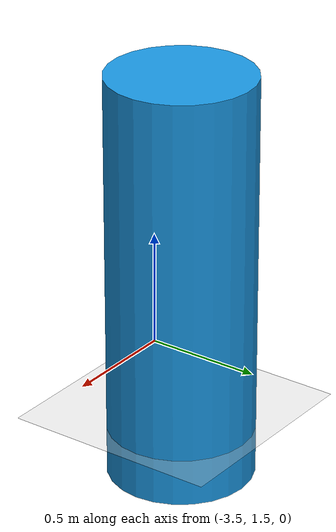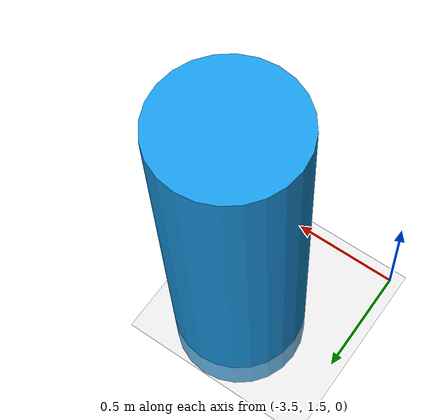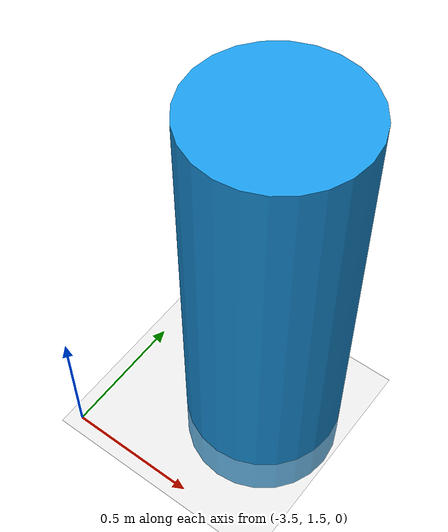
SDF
<sdf version='1.7'>
            <world name='default'>
                <light name='sun' type='directional'>
                <cast_shadows>1</cast_shadows>
                <pose>0 0 10 0 -0 0</pose>
                <diffuse>0.8 0.8 0.8 1</diffuse>
                <specular>0.2 0.2 0.2 1</specular>
                <attenuation>
                    <range>1000</range>
                    <constant>0.9</constant>
                    <linear>0.01</linear>
                    <quadratic>0.001</quadratic>
                </attenuation>
                <direction>-0.5 0.1 -0.9</direction>
                <spot>
                    <inner_angle>0</inner_angle>
                    <outer_angle>0</outer_angle>
                    <falloff>0</falloff>
                </spot>
                </light>

                <!-- Ground Plane地面 -->
                <model name='ground_plane'>
                  <static>true</static>
                  <link name='link'>
                    <collision name='collision'>
                      <geometry>
                        <plane>
                          <normal>0 0 1</normal>
                          <size>100 100</size>
                        </plane>
                      </geometry>
                      <surface>
                        <friction>
                          <ode>
                            <mu>100</mu>
                            <mu2>50</mu2>
                          </ode>
                        </friction>
                      </surface>
                    </collision>
                    <visual name='visual'>
                      <cast_shadows>0</cast_shadows>
                      <geometry>
                        <plane>
                          <normal>0 0 1</normal>
                          <size>100 100</size>
                        </plane>
                      </geometry>
                      <material>
                        <script>
                          <uri>file://media/materials/scripts/gazebo.material</uri>
                          <name>Gazebo/Grey</name>
                        </script>
                      </material>
                    </visual>
                  </link>
                </model>

                            <!-- 动态障碍物：急停场景 -->
                            <model name='dynamic_cylinder_0.6_0.6_1.7'>
                            <static>true</static>
                            <pose>-3 2 0.65 0 0 0</pose> <!-- X, Y, Z, Roll, Pitch, Yaw -->
                            <link name='link'>
                                <visual name='visual'>
                                    <geometry>
                                        <cylinder>
                                            <radius>0.3</radius>
                                            <length>1.7</length>
                                        </cylinder>
                                    </geometry>
                                    <material>
                                        <ambient>0.1 0.6 0.9 1</ambient> <!-- Blue color -->
                                        <diffuse>0.1 0.6 0.9 1</diffuse> <!-- Blue color -->
                                        <specular>0.5 0.5 0.5 1</specular> <!-- Specular highlight -->
                                    </material>
                                </visual>
                            </link>
                            <plugin name="obstacle_motion" filename="libobstaclePathPlugin.so">
                                <orientation>false</orientation>
                                <loop>0</loop>
                                <velocity>1.5</velocity>
                                <path>
                                <!-- 场景设计：从(-3, 2)出发 → 到(-2, -2)急停5秒 → 原路返回(-3, 2) → 再停5秒 -->

                                <!-- 起点：左上方 (-3, 2) -->
                                <waypoint>-3 2 0</waypoint>

                                <!-- 第一段：移动到(-2, -2)，距离约4.1米，耗时约10秒 -->
                                <waypoint>-2 -2 0</waypoint>

                                <!-- 第二段：急停5秒 - 使用原地转小圈（半径0.15米的圆，速度0.4m/s，周长约0.94米，转5圈约需4.7秒≈5秒）-->
                                <waypoint>-1.85 -2 0</waypoint>
                                <waypoint>-2 -1.85 0</waypoint>
                                <waypoint>-2.15 -2 0</waypoint>
                                <waypoint>-2 -2.15 0</waypoint>
                                <waypoint>-1.85 -2 0</waypoint>      <!-- 右，完成1圈 -->

                                <waypoint>-2 -1.85 0</waypoint>
                                <waypoint>-2.15 -2 0</waypoint>
                                <waypoint>-2 -2.15 0</waypoint>
                                <waypoint>-1.85 -2 0</waypoint>

                                <waypoint>-2 -1.85 0</waypoint>
                                <waypoint>-2.15 -2 0</waypoint>
                                <waypoint>-2 -2.15 0</waypoint>
                                <waypoint>-1.85 -2 0</waypoint>

                                <waypoint>-2 -1.85 0</waypoint>
                                <waypoint>-2.15 -2 0</waypoint>
                                <waypoint>-2 -2.15 0</waypoint>
                                <waypoint>-1.85 -2 0</waypoint>

                                <waypoint>-2 -1.85 0</waypoint>
                                <waypoint>-2.15 -2 0</waypoint>
                                <waypoint>-2 -2.15 0</waypoint>
                                <waypoint>-2 -2 0</waypoint>         <!-- 回到中心点 -->

                                <!-- 第三段：原路返回起点(-3, 2)，距离约4.1米，耗时约10秒 -->
                                <waypoint>-3 2 0</waypoint>

                                <!-- 第四段：在起点停5秒 - 再转5圈小圈 -->
                                <waypoint>-2.85 2 0</waypoint>
                                <waypoint>-3 2.15 0</waypoint>
                                <waypoint>-3.15 2 0</waypoint>
                                <waypoint>-3 1.85 0</waypoint>
                                <waypoint>-2.85 2 0</waypoint>       <!-- 第1圈完成 -->

                                <waypoint>-3 2.15 0</waypoint>
                                <waypoint>-3.15 2 0</waypoint>
                                <waypoint>-3 1.85 0</waypoint>
                                <waypoint>-2.85 2 0</waypoint>

                                <waypoint>-3 2.15 0</waypoint>
                                <waypoint>-3.15 2 0</waypoint>
                                <waypoint>-3 1.85 0</waypoint>
                                <waypoint>-2.85 2 0</waypoint>

                                <waypoint>-3 2.15 0</waypoint>
                                <waypoint>-3.15 2 0</waypoint>
                                <waypoint>-3 1.85 0</waypoint>
                                <waypoint>-2.85 2 0</waypoint>

                                <waypoint>-3 2.15 0</waypoint>
                                <waypoint>-3.15 2 0</waypoint>
                                <waypoint>-3 1.85 0</waypoint>
                                <waypoint>-3 2 0</waypoint>          <!-- 回到起点 -->
                                </path>
                            </plugin>
                            </model>

            </world>
            </sdf>
